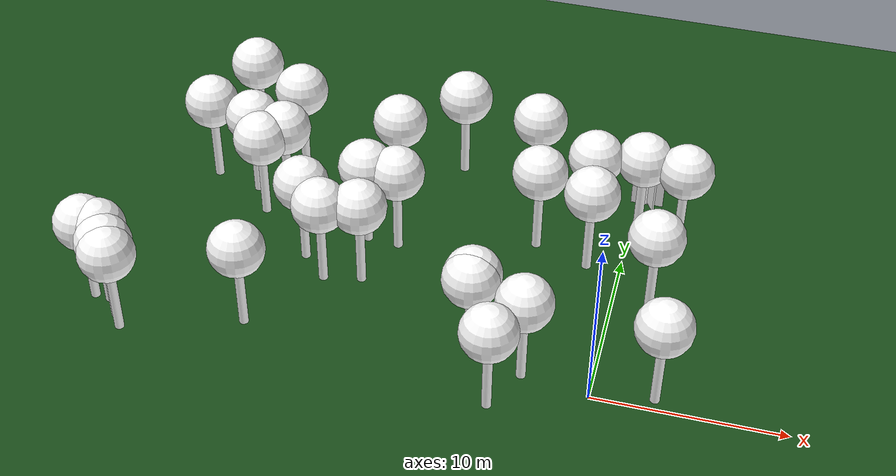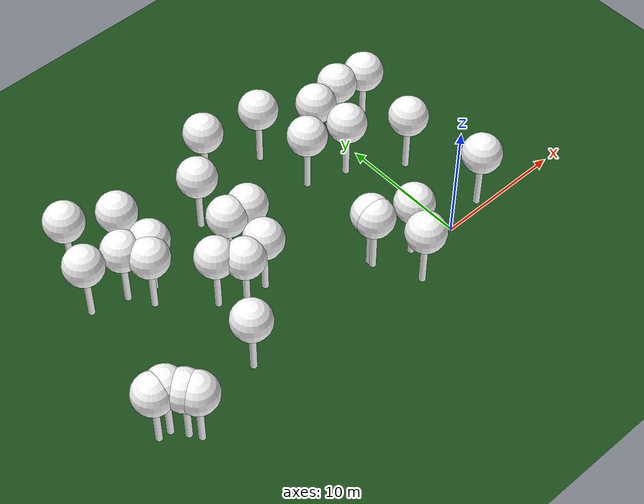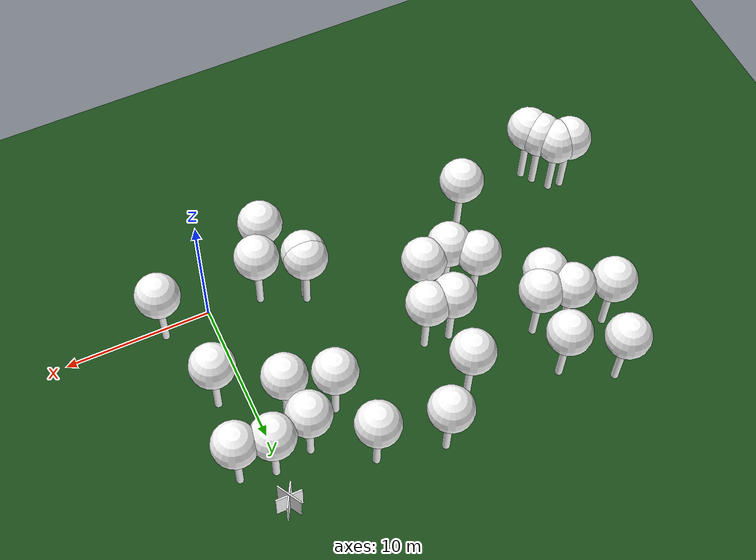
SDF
<sdf version="1.8">
 <world name="forest_world">
  <model name="fire_2">
   <pose>0.56 15.14 1.00 0 0 0.00</pose>
   <static>true</static>
   <link name="fire_link">
    <visual name="fire_2_fire_main_0">
     <geometry><box><size>1.80 0.10 2.00</size></box></geometry>
     <material>
      <ambient>0.7 0.35 0.0 1</ambient>
      <diffuse>1 1 1 1</diffuse>
      <specular>0 0 0 1</specular>
      <emissive>0 0 0 1</emissive>
      <pbr>
       <metal><albedo_map>textures/fire.png</albedo_map><metalness>0.0</metalness><roughness>0.6</roughness></metal>
      </pbr>
     </material>
     <transparency>0.0</transparency>
     <cast_shadows>false</cast_shadows>
    </visual>
    <visual name="fire_2_fire_60_1">
     <pose>0.00 0.00 0.10 0 0 1.05</pose>
     <geometry><box><size>1.80 0.10 2.00</size></box></geometry>
     <material>
      <ambient>0.7 0.35 0.0 1</ambient>
      <diffuse>1 1 1 1</diffuse>
      <specular>0 0 0 1</specular>
      <emissive>0 0 0 1</emissive>
      <pbr>
       <metal><albedo_map>textures/fire.png</albedo_map><metalness>0.0</metalness><roughness>0.6</roughness></metal>
      </pbr>
     </material>
     <transparency>0.0</transparency>
     <cast_shadows>false</cast_shadows>
    </visual>
    <visual name="fire_2_fire_120_2">
     <pose>0.00 0.00 0.20 0 0 2.09</pose>
     <geometry><box><size>1.80 0.10 2.00</size></box></geometry>
     <material>
      <ambient>0.7 0.35 0.0 1</ambient>
      <diffuse>1 1 1 1</diffuse>
      <specular>0 0 0 1</specular>
      <emissive>0 0 0 1</emissive>
      <pbr>
       <metal><albedo_map>textures/fire.png</albedo_map><metalness>0.0</metalness><roughness>0.6</roughness></metal>
      </pbr>
     </material>
     <transparency>0.0</transparency>
     <cast_shadows>false</cast_shadows>
    </visual>
    <light type="point" name="fire_2_light_0">
     <pose>0.40 0.00 0.50 0 0 0</pose>
     <diffuse>1.0 0.7 0.3 1</diffuse>
     <specular>1.0 0.8 0.3 1</specular>
     <intensity>2</intensity>
     <attenuation>
      <range>2</range>
      <constant>0.1</constant>
      <linear>0.05</linear>
      <quadratic>0.02</quadratic>
     </attenuation>
     <cast_shadows>false</cast_shadows>
    </light>
    <light type="point" name="fire_2_light_1">
     <pose>-0.20 0.35 0.50 0 0 0</pose>
     <diffuse>1.0 0.7 0.3 1</diffuse>
     <specular>1.0 0.8 0.3 1</specular>
     <intensity>2</intensity>
     <attenuation>
      <range>2</range>
      <constant>0.1</constant>
      <linear>0.05</linear>
      <quadratic>0.02</quadratic>
     </attenuation>
     <cast_shadows>false</cast_shadows>
    </light>
    <light type="point" name="fire_2_light_2">
     <pose>-0.20 -0.35 0.50 0 0 0</pose>
     <diffuse>1.0 0.7 0.3 1</diffuse>
     <specular>1.0 0.8 0.3 1</specular>
     <intensity>2</intensity>
     <attenuation>
      <range>2</range>
      <constant>0.1</constant>
      <linear>0.05</linear>
      <quadratic>0.02</quadratic>
     </attenuation>
     <cast_shadows>false</cast_shadows>
    </light>
   </link>
   <plugin filename="libignition-gazebo-pose-publisher-system.so" name="ignition::gazebo::systems::PosePublisher">
    <frame_id>world</frame_id>
    <publish_link_pose>true</publish_link_pose>
    <use_pose_vector_msg>true</use_pose_vector_msg>
    <static_publisher>true</static_publisher>
    <static_update_frequency>1</static_update_frequency>
   </plugin>
  </model>
  <model name="tree_simple498">
   <static>1</static>
   <link name="link">
    <pose>0 0 0.1 0 -0 0</pose>
    <collision name="collision_trunk">
     <pose>0 0 2 0 -0 0</pose>
     <geometry><cylinder><radius>0.25</radius><length>4</length></cylinder></geometry>
    </collision>
    <collision name="collision_treetop">
     <pose>0 0 5.2 0 -0 0</pose>
     <geometry><sphere><radius>1.5</radius></sphere></geometry>
    </collision>
    <visual name="trunk">
     <pose>0 0 2 0 -0 0</pose>
     <geometry><cylinder><radius>0.25</radius><length>4</length></cylinder></geometry>
     <material>
      <ambient>0.5 0.5 0.5 1</ambient>
      <diffuse>1.0 1.0 1.0 1</diffuse>
      <specular>0.0 0.0 0.0 1</specular>
      <pbr>
       <metal>
        <albedo_map>../worlds/textures/tree_simple_trunk.jpg</albedo_map>
        <metalness>0.0</metalness>
        <roughness>0.8</roughness>
       </metal>
      </pbr>
     </material>
    </visual>
    <visual name="treetop">
     <pose>0 0 5.2 0 -0 0</pose>
     <geometry><sphere><radius>1.5</radius></sphere></geometry>
     <material>
      <ambient>0.5 0.5 0.5 1</ambient>
      <diffuse>1.0 1.0 1.0 1</diffuse>
      <specular>0.0 0.0 0.0 1</specular>
      <pbr>
       <metal>
        <albedo_map>../worlds/textures/tree_simple_treetop.jpg</albedo_map>
        <metalness>0.0</metalness>
        <roughness>0.9</roughness>
       </metal>
      </pbr>
     </material>
    </visual>
   </link>
   <pose>-20.062069779 9.09254194943 0 0 -0 0</pose>
  </model>
  <model name="tree_simple488">
   <static>1</static>
   <link name="link">
    <pose>0 0 0.1 0 -0 0</pose>
    <collision name="collision_trunk">
     <pose>0 0 2 0 -0 0</pose>
     <geometry><cylinder><radius>0.25</radius><length>4</length></cylinder></geometry>
    </collision>
    <collision name="collision_treetop">
     <pose>0 0 5.2 0 -0 0</pose>
     <geometry><sphere><radius>1.5</radius></sphere></geometry>
    </collision>
    <visual name="trunk">
     <pose>0 0 2 0 -0 0</pose>
     <geometry><cylinder><radius>0.25</radius><length>4</length></cylinder></geometry>
     <material>
      <ambient>0.5 0.5 0.5 1</ambient>
      <diffuse>1.0 1.0 1.0 1</diffuse>
      <specular>0.0 0.0 0.0 1</specular>
      <pbr>
       <metal>
        <albedo_map>../worlds/textures/tree_simple_trunk.jpg</albedo_map>
        <metalness>0.0</metalness>
        <roughness>0.8</roughness>
       </metal>
      </pbr>
     </material>
    </visual>
    <visual name="treetop">
     <pose>0 0 5.2 0 -0 0</pose>
     <geometry><sphere><radius>1.5</radius></sphere></geometry>
     <material>
      <ambient>0.5 0.5 0.5 1</ambient>
      <diffuse>1.0 1.0 1.0 1</diffuse>
      <specular>0.0 0.0 0.0 1</specular>
      <pbr>
       <metal>
        <albedo_map>../worlds/textures/tree_simple_treetop.jpg</albedo_map>
        <metalness>0.0</metalness>
        <roughness>0.9</roughness>
       </metal>
      </pbr>
     </material>
    </visual>
   </link>
   <pose>-13.1215818691 12.435953241 0 0 -0 0</pose>
  </model>
  <model name="tree_simple480">
   <static>1</static>
   <link name="link">
    <pose>0 0 0.1 0 -0 0</pose>
    <collision name="collision_trunk">
     <pose>0 0 2 0 -0 0</pose>
     <geometry><cylinder><radius>0.25</radius><length>4</length></cylinder></geometry>
    </collision>
    <collision name="collision_treetop">
     <pose>0 0 5.2 0 -0 0</pose>
     <geometry><sphere><radius>1.5</radius></sphere></geometry>
    </collision>
    <visual name="trunk">
     <pose>0 0 2 0 -0 0</pose>
     <geometry><cylinder><radius>0.25</radius><length>4</length></cylinder></geometry>
     <material>
      <ambient>0.5 0.5 0.5 1</ambient>
      <diffuse>1.0 1.0 1.0 1</diffuse>
      <specular>0.0 0.0 0.0 1</specular>
      <pbr>
       <metal>
        <albedo_map>../worlds/textures/tree_simple_trunk.jpg</albedo_map>
        <metalness>0.0</metalness>
        <roughness>0.8</roughness>
       </metal>
      </pbr>
     </material>
    </visual>
    <visual name="treetop">
     <pose>0 0 5.2 0 -0 0</pose>
     <geometry><sphere><radius>1.5</radius></sphere></geometry>
     <material>
      <ambient>0.5 0.5 0.5 1</ambient>
      <diffuse>1.0 1.0 1.0 1</diffuse>
      <specular>0.0 0.0 0.0 1</specular>
      <pbr>
       <metal>
        <albedo_map>../worlds/textures/tree_simple_treetop.jpg</albedo_map>
        <metalness>0.0</metalness>
        <roughness>0.9</roughness>
       </metal>
      </pbr>
     </material>
    </visual>
   </link>
   <pose>-2.16211412072 12.1351070175 0 0 -0 0</pose>
  </model>
  <model name="tree_simple460">
   <static>1</static>
   <link name="link">
    <pose>0 0 0.1 0 -0 0</pose>
    <collision name="collision_trunk">
     <pose>0 0 2 0 -0 0</pose>
     <geometry><cylinder><radius>0.25</radius><length>4</length></cylinder></geometry>
    </collision>
    <collision name="collision_treetop">
     <pose>0 0 5.2 0 -0 0</pose>
     <geometry><sphere><radius>1.5</radius></sphere></geometry>
    </collision>
    <visual name="trunk">
     <pose>0 0 2 0 -0 0</pose>
     <geometry><cylinder><radius>0.25</radius><length>4</length></cylinder></geometry>
     <material>
      <ambient>0.5 0.5 0.5 1</ambient>
      <diffuse>1.0 1.0 1.0 1</diffuse>
      <specular>0.0 0.0 0.0 1</specular>
      <pbr>
       <metal>
        <albedo_map>../worlds/textures/tree_simple_trunk.jpg</albedo_map>
        <metalness>0.0</metalness>
        <roughness>0.8</roughness>
       </metal>
      </pbr>
     </material>
    </visual>
    <visual name="treetop">
     <pose>0 0 5.2 0 -0 0</pose>
     <geometry><sphere><radius>1.5</radius></sphere></geometry>
     <material>
      <ambient>0.5 0.5 0.5 1</ambient>
      <diffuse>1.0 1.0 1.0 1</diffuse>
      <specular>0.0 0.0 0.0 1</specular>
      <pbr>
       <metal>
        <albedo_map>../worlds/textures/tree_simple_treetop.jpg</albedo_map>
        <metalness>0.0</metalness>
        <roughness>0.9</roughness>
       </metal>
      </pbr>
     </material>
    </visual>
   </link>
   <pose>-19.1263542494 10.273291852 0 0 -0 0</pose>
  </model>
  <model name="tree_simple453">
   <static>1</static>
   <link name="link">
    <pose>0 0 0.1 0 -0 0</pose>
    <collision name="collision_trunk">
     <pose>0 0 2 0 -0 0</pose>
     <geometry><cylinder><radius>0.25</radius><length>4</length></cylinder></geometry>
    </collision>
    <collision name="collision_treetop">
     <pose>0 0 5.2 0 -0 0</pose>
     <geometry><sphere><radius>1.5</radius></sphere></geometry>
    </collision>
    <visual name="trunk">
     <pose>0 0 2 0 -0 0</pose>
     <geometry><cylinder><radius>0.25</radius><length>4</length></cylinder></geometry>
     <material>
      <ambient>0.5 0.5 0.5 1</ambient>
      <diffuse>1.0 1.0 1.0 1</diffuse>
      <specular>0.0 0.0 0.0 1</specular>
      <pbr>
       <metal>
        <albedo_map>../worlds/textures/tree_simple_trunk.jpg</albedo_map>
        <metalness>0.0</metalness>
        <roughness>0.8</roughness>
       </metal>
      </pbr>
     </material>
    </visual>
    <visual name="treetop">
     <pose>0 0 5.2 0 -0 0</pose>
     <geometry><sphere><radius>1.5</radius></sphere></geometry>
     <material>
      <ambient>0.5 0.5 0.5 1</ambient>
      <diffuse>1.0 1.0 1.0 1</diffuse>
      <specular>0.0 0.0 0.0 1</specular>
      <pbr>
       <metal>
        <albedo_map>../worlds/textures/tree_simple_treetop.jpg</albedo_map>
        <metalness>0.0</metalness>
        <roughness>0.9</roughness>
       </metal>
      </pbr>
     </material>
    </visual>
   </link>
   <pose>-12.135251061 8.19022164755 0 0 -0 0</pose>
  </model>
  <model name="tree_simple448">
   <static>1</static>
   <link name="link">
    <pose>0 0 0.1 0 -0 0</pose>
    <collision name="collision_trunk">
     <pose>0 0 2 0 -0 0</pose>
     <geometry><cylinder><radius>0.25</radius><length>4</length></cylinder></geometry>
    </collision>
    <collision name="collision_treetop">
     <pose>0 0 5.2 0 -0 0</pose>
     <geometry><sphere><radius>1.5</radius></sphere></geometry>
    </collision>
    <visual name="trunk">
     <pose>0 0 2 0 -0 0</pose>
     <geometry><cylinder><radius>0.25</radius><length>4</length></cylinder></geometry>
     <material>
      <ambient>0.5 0.5 0.5 1</ambient>
      <diffuse>1.0 1.0 1.0 1</diffuse>
      <specular>0.0 0.0 0.0 1</specular>
      <pbr>
       <metal>
        <albedo_map>../worlds/textures/tree_simple_trunk.jpg</albedo_map>
        <metalness>0.0</metalness>
        <roughness>0.8</roughness>
       </metal>
      </pbr>
     </material>
    </visual>
    <visual name="treetop">
     <pose>0 0 5.2 0 -0 0</pose>
     <geometry><sphere><radius>1.5</radius></sphere></geometry>
     <material>
      <ambient>0.5 0.5 0.5 1</ambient>
      <diffuse>1.0 1.0 1.0 1</diffuse>
      <specular>0.0 0.0 0.0 1</specular>
      <pbr>
       <metal>
        <albedo_map>../worlds/textures/tree_simple_treetop.jpg</albedo_map>
        <metalness>0.0</metalness>
        <roughness>0.9</roughness>
       </metal>
      </pbr>
     </material>
    </visual>
   </link>
   <pose>-24.5519753109 -1.42546954192 0 0 -0 0</pose>
  </model>
  <model name="tree_simple444">
   <static>1</static>
   <link name="link">
    <pose>0 0 0.1 0 -0 0</pose>
    <collision name="collision_trunk">
     <pose>0 0 2 0 -0 0</pose>
     <geometry><cylinder><radius>0.25</radius><length>4</length></cylinder></geometry>
    </collision>
    <collision name="collision_treetop">
     <pose>0 0 5.2 0 -0 0</pose>
     <geometry><sphere><radius>1.5</radius></sphere></geometry>
    </collision>
    <visual name="trunk">
     <pose>0 0 2 0 -0 0</pose>
     <geometry><cylinder><radius>0.25</radius><length>4</length></cylinder></geometry>
     <material>
      <ambient>0.5 0.5 0.5 1</ambient>
      <diffuse>1.0 1.0 1.0 1</diffuse>
      <specular>0.0 0.0 0.0 1</specular>
      <pbr>
       <metal>
        <albedo_map>../worlds/textures/tree_simple_trunk.jpg</albedo_map>
        <metalness>0.0</metalness>
        <roughness>0.8</roughness>
       </metal>
      </pbr>
     </material>
    </visual>
    <visual name="treetop">
     <pose>0 0 5.2 0 -0 0</pose>
     <geometry><sphere><radius>1.5</radius></sphere></geometry>
     <material>
      <ambient>0.5 0.5 0.5 1</ambient>
      <diffuse>1.0 1.0 1.0 1</diffuse>
      <specular>0.0 0.0 0.0 1</specular>
      <pbr>
       <metal>
        <albedo_map>../worlds/textures/tree_simple_treetop.jpg</albedo_map>
        <metalness>0.0</metalness>
        <roughness>0.9</roughness>
       </metal>
      </pbr>
     </material>
    </visual>
   </link>
   <pose>-23.7375888222 11.4825776361 0 0 -0 0</pose>
  </model>
  <model name="tree_simple424">
   <static>1</static>
   <link name="link">
    <pose>0 0 0.1 0 -0 0</pose>
    <collision name="collision_trunk">
     <pose>0 0 2 0 -0 0</pose>
     <geometry><cylinder><radius>0.25</radius><length>4</length></cylinder></geometry>
    </collision>
    <collision name="collision_treetop">
     <pose>0 0 5.2 0 -0 0</pose>
     <geometry><sphere><radius>1.5</radius></sphere></geometry>
    </collision>
    <visual name="trunk">
     <pose>0 0 2 0 -0 0</pose>
     <geometry><cylinder><radius>0.25</radius><length>4</length></cylinder></geometry>
     <material>
      <ambient>0.5 0.5 0.5 1</ambient>
      <diffuse>1.0 1.0 1.0 1</diffuse>
      <specular>0.0 0.0 0.0 1</specular>
      <pbr>
       <metal>
        <albedo_map>../worlds/textures/tree_simple_trunk.jpg</albedo_map>
        <metalness>0.0</metalness>
        <roughness>0.8</roughness>
       </metal>
      </pbr>
     </material>
    </visual>
    <visual name="treetop">
     <pose>0 0 5.2 0 -0 0</pose>
     <geometry><sphere><radius>1.5</radius></sphere></geometry>
     <material>
      <ambient>0.5 0.5 0.5 1</ambient>
      <diffuse>1.0 1.0 1.0 1</diffuse>
      <specular>0.0 0.0 0.0 1</specular>
      <pbr>
       <metal>
        <albedo_map>../worlds/textures/tree_simple_treetop.jpg</albedo_map>
        <metalness>0.0</metalness>
        <roughness>0.9</roughness>
       </metal>
      </pbr>
     </material>
    </visual>
   </link>
   <pose>-16.7770993139 6.12178979124 0 0 -0 0</pose>
  </model>
  <model name="tree_simple417">
   <static>1</static>
   <link name="link">
    <pose>0 0 0.1 0 -0 0</pose>
    <collision name="collision_trunk">
     <pose>0 0 2 0 -0 0</pose>
     <geometry><cylinder><radius>0.25</radius><length>4</length></cylinder></geometry>
    </collision>
    <collision name="collision_treetop">
     <pose>0 0 5.2 0 -0 0</pose>
     <geometry><sphere><radius>1.5</radius></sphere></geometry>
    </collision>
    <visual name="trunk">
     <pose>0 0 2 0 -0 0</pose>
     <geometry><cylinder><radius>0.25</radius><length>4</length></cylinder></geometry>
     <material>
      <ambient>0.5 0.5 0.5 1</ambient>
      <diffuse>1.0 1.0 1.0 1</diffuse>
      <specular>0.0 0.0 0.0 1</specular>
      <pbr>
       <metal>
        <albedo_map>../worlds/textures/tree_simple_trunk.jpg</albedo_map>
        <metalness>0.0</metalness>
        <roughness>0.8</roughness>
       </metal>
      </pbr>
     </material>
    </visual>
    <visual name="treetop">
     <pose>0 0 5.2 0 -0 0</pose>
     <geometry><sphere><radius>1.5</radius></sphere></geometry>
     <material>
      <ambient>0.5 0.5 0.5 1</ambient>
      <diffuse>1.0 1.0 1.0 1</diffuse>
      <specular>0.0 0.0 0.0 1</specular>
      <pbr>
       <metal>
        <albedo_map>../worlds/textures/tree_simple_treetop.jpg</albedo_map>
        <metalness>0.0</metalness>
        <roughness>0.9</roughness>
       </metal>
      </pbr>
     </material>
    </visual>
   </link>
   <pose>-1.82310579314 9.17527441854 0 0 -0 0</pose>
  </model>
  <model name="tree_simple412">
   <static>1</static>
   <link name="link">
    <pose>0 0 0.1 0 -0 0</pose>
    <collision name="collision_trunk">
     <pose>0 0 2 0 -0 0</pose>
     <geometry><cylinder><radius>0.25</radius><length>4</length></cylinder></geometry>
    </collision>
    <collision name="collision_treetop">
     <pose>0 0 5.2 0 -0 0</pose>
     <geometry><sphere><radius>1.5</radius></sphere></geometry>
    </collision>
    <visual name="trunk">
     <pose>0 0 2 0 -0 0</pose>
     <geometry><cylinder><radius>0.25</radius><length>4</length></cylinder></geometry>
     <material>
      <ambient>0.5 0.5 0.5 1</ambient>
      <diffuse>1.0 1.0 1.0 1</diffuse>
      <specular>0.0 0.0 0.0 1</specular>
      <pbr>
       <metal>
        <albedo_map>../worlds/textures/tree_simple_trunk.jpg</albedo_map>
        <metalness>0.0</metalness>
        <roughness>0.8</roughness>
       </metal>
      </pbr>
     </material>
    </visual>
    <visual name="treetop">
     <pose>0 0 5.2 0 -0 0</pose>
     <geometry><sphere><radius>1.5</radius></sphere></geometry>
     <material>
      <ambient>0.5 0.5 0.5 1</ambient>
      <diffuse>1.0 1.0 1.0 1</diffuse>
      <specular>0.0 0.0 0.0 1</specular>
      <pbr>
       <metal>
        <albedo_map>../worlds/textures/tree_simple_treetop.jpg</albedo_map>
        <metalness>0.0</metalness>
        <roughness>0.9</roughness>
       </metal>
      </pbr>
     </material>
    </visual>
   </link>
   <pose>1.94235434688 6.68973059551 0 0 -0 0</pose>
  </model>
  <model name="tree_simple393">
   <static>1</static>
   <link name="link">
    <pose>0 0 0.1 0 -0 0</pose>
    <collision name="collision_trunk">
     <pose>0 0 2 0 -0 0</pose>
     <geometry><cylinder><radius>0.25</radius><length>4</length></cylinder></geometry>
    </collision>
    <collision name="collision_treetop">
     <pose>0 0 5.2 0 -0 0</pose>
     <geometry><sphere><radius>1.5</radius></sphere></geometry>
    </collision>
    <visual name="trunk">
     <pose>0 0 2 0 -0 0</pose>
     <geometry><cylinder><radius>0.25</radius><length>4</length></cylinder></geometry>
     <material>
      <ambient>0.5 0.5 0.5 1</ambient>
      <diffuse>1.0 1.0 1.0 1</diffuse>
      <specular>0.0 0.0 0.0 1</specular>
      <pbr>
       <metal>
        <albedo_map>../worlds/textures/tree_simple_trunk.jpg</albedo_map>
        <metalness>0.0</metalness>
        <roughness>0.8</roughness>
       </metal>
      </pbr>
     </material>
    </visual>
    <visual name="treetop">
     <pose>0 0 5.2 0 -0 0</pose>
     <geometry><sphere><radius>1.5</radius></sphere></geometry>
     <material>
      <ambient>0.5 0.5 0.5 1</ambient>
      <diffuse>1.0 1.0 1.0 1</diffuse>
      <specular>0.0 0.0 0.0 1</specular>
      <pbr>
       <metal>
        <albedo_map>../worlds/textures/tree_simple_treetop.jpg</albedo_map>
        <metalness>0.0</metalness>
        <roughness>0.9</roughness>
       </metal>
      </pbr>
     </material>
    </visual>
   </link>
   <pose>-19.2161378336 13.717868908 0 0 -0 0</pose>
  </model>
  <model name="tree_simple376">
   <static>1</static>
   <link name="link">
    <pose>0 0 0.1 0 -0 0</pose>
    <collision name="collision_trunk">
     <pose>0 0 2 0 -0 0</pose>
     <geometry><cylinder><radius>0.25</radius><length>4</length></cylinder></geometry>
    </collision>
    <collision name="collision_treetop">
     <pose>0 0 5.2 0 -0 0</pose>
     <geometry><sphere><radius>1.5</radius></sphere></geometry>
    </collision>
    <visual name="trunk">
     <pose>0 0 2 0 -0 0</pose>
     <geometry><cylinder><radius>0.25</radius><length>4</length></cylinder></geometry>
     <material>
      <ambient>0.5 0.5 0.5 1</ambient>
      <diffuse>1.0 1.0 1.0 1</diffuse>
      <specular>0.0 0.0 0.0 1</specular>
      <pbr>
       <metal>
        <albedo_map>../worlds/textures/tree_simple_trunk.jpg</albedo_map>
        <metalness>0.0</metalness>
        <roughness>0.8</roughness>
       </metal>
      </pbr>
     </material>
    </visual>
    <visual name="treetop">
     <pose>0 0 5.2 0 -0 0</pose>
     <geometry><sphere><radius>1.5</radius></sphere></geometry>
     <material>
      <ambient>0.5 0.5 0.5 1</ambient>
      <diffuse>1.0 1.0 1.0 1</diffuse>
      <specular>0.0 0.0 0.0 1</specular>
      <pbr>
       <metal>
        <albedo_map>../worlds/textures/tree_simple_treetop.jpg</albedo_map>
        <metalness>0.0</metalness>
        <roughness>0.9</roughness>
       </metal>
      </pbr>
     </material>
    </visual>
   </link>
   <pose>-3.57495660346 0.511559407044 0 0 -0 0</pose>
  </model>
  <model name="tree_simple360">
   <static>1</static>
   <link name="link">
    <pose>0 0 0.1 0 -0 0</pose>
    <collision name="collision_trunk">
     <pose>0 0 2 0 -0 0</pose>
     <geometry><cylinder><radius>0.25</radius><length>4</length></cylinder></geometry>
    </collision>
    <collision name="collision_treetop">
     <pose>0 0 5.2 0 -0 0</pose>
     <geometry><sphere><radius>1.5</radius></sphere></geometry>
    </collision>
    <visual name="trunk">
     <pose>0 0 2 0 -0 0</pose>
     <geometry><cylinder><radius>0.25</radius><length>4</length></cylinder></geometry>
     <material>
      <ambient>0.5 0.5 0.5 1</ambient>
      <diffuse>1.0 1.0 1.0 1</diffuse>
      <specular>0.0 0.0 0.0 1</specular>
      <pbr>
       <metal>
        <albedo_map>../worlds/textures/tree_simple_trunk.jpg</albedo_map>
        <metalness>0.0</metalness>
        <roughness>0.8</roughness>
       </metal>
      </pbr>
     </material>
    </visual>
    <visual name="treetop">
     <pose>0 0 5.2 0 -0 0</pose>
     <geometry><sphere><radius>1.5</radius></sphere></geometry>
     <material>
      <ambient>0.5 0.5 0.5 1</ambient>
      <diffuse>1.0 1.0 1.0 1</diffuse>
      <specular>0.0 0.0 0.0 1</specular>
      <pbr>
       <metal>
        <albedo_map>../worlds/textures/tree_simple_treetop.jpg</albedo_map>
        <metalness>0.0</metalness>
        <roughness>0.9</roughness>
       </metal>
      </pbr>
     </material>
    </visual>
   </link>
   <pose>-13.8761955988 8.30702560736 0 0 -0 0</pose>
  </model>
  <model name="tree_simple338">
   <static>1</static>
   <link name="link">
    <pose>0 0 0.1 0 -0 0</pose>
    <collision name="collision_trunk">
     <pose>0 0 2 0 -0 0</pose>
     <geometry><cylinder><radius>0.25</radius><length>4</length></cylinder></geometry>
    </collision>
    <collision name="collision_treetop">
     <pose>0 0 5.2 0 -0 0</pose>
     <geometry><sphere><radius>1.5</radius></sphere></geometry>
    </collision>
    <visual name="trunk">
     <pose>0 0 2 0 -0 0</pose>
     <geometry><cylinder><radius>0.25</radius><length>4</length></cylinder></geometry>
     <material>
      <ambient>0.5 0.5 0.5 1</ambient>
      <diffuse>1.0 1.0 1.0 1</diffuse>
      <specular>0.0 0.0 0.0 1</specular>
      <pbr>
       <metal>
        <albedo_map>../worlds/textures/tree_simple_trunk.jpg</albedo_map>
        <metalness>0.0</metalness>
        <roughness>0.8</roughness>
       </metal>
      </pbr>
     </material>
    </visual>
    <visual name="treetop">
     <pose>0 0 5.2 0 -0 0</pose>
     <geometry><sphere><radius>1.5</radius></sphere></geometry>
     <material>
      <ambient>0.5 0.5 0.5 1</ambient>
      <diffuse>1.0 1.0 1.0 1</diffuse>
      <specular>0.0 0.0 0.0 1</specular>
      <pbr>
       <metal>
        <albedo_map>../worlds/textures/tree_simple_treetop.jpg</albedo_map>
        <metalness>0.0</metalness>
        <roughness>0.9</roughness>
       </metal>
      </pbr>
     </material>
    </visual>
   </link>
   <pose>-22.4236352143 15.4465495723 0 0 -0 0</pose>
  </model>
  <model name="tree_simple324">
   <static>1</static>
   <link name="link">
    <pose>0 0 0.1 0 -0 0</pose>
    <collision name="collision_trunk">
     <pose>0 0 2 0 -0 0</pose>
     <geometry><cylinder><radius>0.25</radius><length>4</length></cylinder></geometry>
    </collision>
    <collision name="collision_treetop">
     <pose>0 0 5.2 0 -0 0</pose>
     <geometry><sphere><radius>1.5</radius></sphere></geometry>
    </collision>
    <visual name="trunk">
     <pose>0 0 2 0 -0 0</pose>
     <geometry><cylinder><radius>0.25</radius><length>4</length></cylinder></geometry>
     <material>
      <ambient>0.5 0.5 0.5 1</ambient>
      <diffuse>1.0 1.0 1.0 1</diffuse>
      <specular>0.0 0.0 0.0 1</specular>
      <pbr>
       <metal>
        <albedo_map>../worlds/textures/tree_simple_trunk.jpg</albedo_map>
        <metalness>0.0</metalness>
        <roughness>0.8</roughness>
       </metal>
      </pbr>
     </material>
    </visual>
    <visual name="treetop">
     <pose>0 0 5.2 0 -0 0</pose>
     <geometry><sphere><radius>1.5</radius></sphere></geometry>
     <material>
      <ambient>0.5 0.5 0.5 1</ambient>
      <diffuse>1.0 1.0 1.0 1</diffuse>
      <specular>0.0 0.0 0.0 1</specular>
      <pbr>
       <metal>
        <albedo_map>../worlds/textures/tree_simple_treetop.jpg</albedo_map>
        <metalness>0.0</metalness>
        <roughness>0.9</roughness>
       </metal>
      </pbr>
     </material>
    </visual>
   </link>
   <pose>2.67974288493 12.1656578915 0 0 -0 0</pose>
  </model>
  <model name="tree_simple308">
   <static>1</static>
   <link name="link">
    <pose>0 0 0.1 0 -0 0</pose>
    <collision name="collision_trunk">
     <pose>0 0 2 0 -0 0</pose>
     <geometry><cylinder><radius>0.25</radius><length>4</length></cylinder></geometry>
    </collision>
    <collision name="collision_treetop">
     <pose>0 0 5.2 0 -0 0</pose>
     <geometry><sphere><radius>1.5</radius></sphere></geometry>
    </collision>
    <visual name="trunk">
     <pose>0 0 2 0 -0 0</pose>
     <geometry><cylinder><radius>0.25</radius><length>4</length></cylinder></geometry>
     <material>
      <ambient>0.5 0.5 0.5 1</ambient>
      <diffuse>1.0 1.0 1.0 1</diffuse>
      <specular>0.0 0.0 0.0 1</specular>
      <pbr>
       <metal>
        <albedo_map>../worlds/textures/tree_simple_trunk.jpg</albedo_map>
        <metalness>0.0</metalness>
        <roughness>0.8</roughness>
       </metal>
      </pbr>
     </material>
    </visual>
    <visual name="treetop">
     <pose>0 0 5.2 0 -0 0</pose>
     <geometry><sphere><radius>1.5</radius></sphere></geometry>
     <material>
      <ambient>0.5 0.5 0.5 1</ambient>
      <diffuse>1.0 1.0 1.0 1</diffuse>
      <specular>0.0 0.0 0.0 1</specular>
      <pbr>
       <metal>
        <albedo_map>../worlds/textures/tree_simple_treetop.jpg</albedo_map>
        <metalness>0.0</metalness>
        <roughness>0.9</roughness>
       </metal>
      </pbr>
     </material>
    </visual>
   </link>
   <pose>3.23733276298 0.582978933188 0 0 -0 0</pose>
  </model>
  <model name="tree_simple284">
   <static>1</static>
   <link name="link">
    <pose>0 0 0.1 0 -0 0</pose>
    <collision name="collision_trunk">
     <pose>0 0 2 0 -0 0</pose>
     <geometry><cylinder><radius>0.25</radius><length>4</length></cylinder></geometry>
    </collision>
    <collision name="collision_treetop">
     <pose>0 0 5.2 0 -0 0</pose>
     <geometry><sphere><radius>1.5</radius></sphere></geometry>
    </collision>
    <visual name="trunk">
     <pose>0 0 2 0 -0 0</pose>
     <geometry><cylinder><radius>0.25</radius><length>4</length></cylinder></geometry>
     <material>
      <ambient>0.5 0.5 0.5 1</ambient>
      <diffuse>1.0 1.0 1.0 1</diffuse>
      <specular>0.0 0.0 0.0 1</specular>
      <pbr>
       <metal>
        <albedo_map>../worlds/textures/tree_simple_trunk.jpg</albedo_map>
        <metalness>0.0</metalness>
        <roughness>0.8</roughness>
       </metal>
      </pbr>
     </material>
    </visual>
    <visual name="treetop">
     <pose>0 0 5.2 0 -0 0</pose>
     <geometry><sphere><radius>1.5</radius></sphere></geometry>
     <material>
      <ambient>0.5 0.5 0.5 1</ambient>
      <diffuse>1.0 1.0 1.0 1</diffuse>
      <specular>0.0 0.0 0.0 1</specular>
      <pbr>
       <metal>
        <albedo_map>../worlds/textures/tree_simple_treetop.jpg</albedo_map>
        <metalness>0.0</metalness>
        <roughness>0.9</roughness>
       </metal>
      </pbr>
     </material>
    </visual>
   </link>
   <pose>-18.3910783374 0.559962709575 0 0 -0 0</pose>
  </model>
  <model name="tree_simple282">
   <static>1</static>
   <link name="link">
    <pose>0 0 0.1 0 -0 0</pose>
    <collision name="collision_trunk">
     <pose>0 0 2 0 -0 0</pose>
     <geometry><cylinder><radius>0.25</radius><length>4</length></cylinder></geometry>
    </collision>
    <collision name="collision_treetop">
     <pose>0 0 5.2 0 -0 0</pose>
     <geometry><sphere><radius>1.5</radius></sphere></geometry>
    </collision>
    <visual name="trunk">
     <pose>0 0 2 0 -0 0</pose>
     <geometry><cylinder><radius>0.25</radius><length>4</length></cylinder></geometry>
     <material>
      <ambient>0.5 0.5 0.5 1</ambient>
      <diffuse>1.0 1.0 1.0 1</diffuse>
      <specular>0.0 0.0 0.0 1</specular>
      <pbr>
       <metal>
        <albedo_map>../worlds/textures/tree_simple_trunk.jpg</albedo_map>
        <metalness>0.0</metalness>
        <roughness>0.8</roughness>
       </metal>
      </pbr>
     </material>
    </visual>
    <visual name="treetop">
     <pose>0 0 5.2 0 -0 0</pose>
     <geometry><sphere><radius>1.5</radius></sphere></geometry>
     <material>
      <ambient>0.5 0.5 0.5 1</ambient>
      <diffuse>1.0 1.0 1.0 1</diffuse>
      <specular>0.0 0.0 0.0 1</specular>
      <pbr>
       <metal>
        <albedo_map>../worlds/textures/tree_simple_treetop.jpg</albedo_map>
        <metalness>0.0</metalness>
        <roughness>0.9</roughness>
       </metal>
      </pbr>
     </material>
    </visual>
   </link>
   <pose>-10.116665752 15.3935200089 0 0 -0 0</pose>
  </model>
  <model name="tree_simple279">
   <static>1</static>
   <link name="link">
    <pose>0 0 0.1 0 -0 0</pose>
    <collision name="collision_trunk">
     <pose>0 0 2 0 -0 0</pose>
     <geometry><cylinder><radius>0.25</radius><length>4</length></cylinder></geometry>
    </collision>
    <collision name="collision_treetop">
     <pose>0 0 5.2 0 -0 0</pose>
     <geometry><sphere><radius>1.5</radius></sphere></geometry>
    </collision>
    <visual name="trunk">
     <pose>0 0 2 0 -0 0</pose>
     <geometry><cylinder><radius>0.25</radius><length>4</length></cylinder></geometry>
     <material>
      <ambient>0.5 0.5 0.5 1</ambient>
      <diffuse>1.0 1.0 1.0 1</diffuse>
      <specular>0.0 0.0 0.0 1</specular>
      <pbr>
       <metal>
        <albedo_map>../worlds/textures/tree_simple_trunk.jpg</albedo_map>
        <metalness>0.0</metalness>
        <roughness>0.8</roughness>
       </metal>
      </pbr>
     </material>
    </visual>
    <visual name="treetop">
     <pose>0 0 5.2 0 -0 0</pose>
     <geometry><sphere><radius>1.5</radius></sphere></geometry>
     <material>
      <ambient>0.5 0.5 0.5 1</ambient>
      <diffuse>1.0 1.0 1.0 1</diffuse>
      <specular>0.0 0.0 0.0 1</specular>
      <pbr>
       <metal>
        <albedo_map>../worlds/textures/tree_simple_treetop.jpg</albedo_map>
        <metalness>0.0</metalness>
        <roughness>0.9</roughness>
       </metal>
      </pbr>
     </material>
    </visual>
   </link>
   <pose>-25.0449823603 -0.682470499347 0 0 -0 0</pose>
  </model>
  <model name="tree_simple245">
   <static>1</static>
   <link name="link">
    <pose>0 0 0.1 0 -0 0</pose>
    <collision name="collision_trunk">
     <pose>0 0 2 0 -0 0</pose>
     <geometry><cylinder><radius>0.25</radius><length>4</length></cylinder></geometry>
    </collision>
    <collision name="collision_treetop">
     <pose>0 0 5.2 0 -0 0</pose>
     <geometry><sphere><radius>1.5</radius></sphere></geometry>
    </collision>
    <visual name="trunk">
     <pose>0 0 2 0 -0 0</pose>
     <geometry><cylinder><radius>0.25</radius><length>4</length></cylinder></geometry>
     <material>
      <ambient>0.5 0.5 0.5 1</ambient>
      <diffuse>1.0 1.0 1.0 1</diffuse>
      <specular>0.0 0.0 0.0 1</specular>
      <pbr>
       <metal>
        <albedo_map>../worlds/textures/tree_simple_trunk.jpg</albedo_map>
        <metalness>0.0</metalness>
        <roughness>0.8</roughness>
       </metal>
      </pbr>
     </material>
    </visual>
    <visual name="treetop">
     <pose>0 0 5.2 0 -0 0</pose>
     <geometry><sphere><radius>1.5</radius></sphere></geometry>
     <material>
      <ambient>0.5 0.5 0.5 1</ambient>
      <diffuse>1.0 1.0 1.0 1</diffuse>
      <specular>0.0 0.0 0.0 1</specular>
      <pbr>
       <metal>
        <albedo_map>../worlds/textures/tree_simple_treetop.jpg</albedo_map>
        <metalness>0.0</metalness>
        <roughness>0.9</roughness>
       </metal>
      </pbr>
     </material>
    </visual>
   </link>
   <pose>-25.7973722527 0.315231770046 0 0 -0 0</pose>
  </model>
  <model name="tree_simple226">
   <static>1</static>
   <link name="link">
    <pose>0 0 0.1 0 -0 0</pose>
    <collision name="collision_trunk">
     <pose>0 0 2 0 -0 0</pose>
     <geometry><cylinder><radius>0.25</radius><length>4</length></cylinder></geometry>
    </collision>
    <collision name="collision_treetop">
     <pose>0 0 5.2 0 -0 0</pose>
     <geometry><sphere><radius>1.5</radius></sphere></geometry>
    </collision>
    <visual name="trunk">
     <pose>0 0 2 0 -0 0</pose>
     <geometry><cylinder><radius>0.25</radius><length>4</length></cylinder></geometry>
     <material>
      <ambient>0.5 0.5 0.5 1</ambient>
      <diffuse>1.0 1.0 1.0 1</diffuse>
      <specular>0.0 0.0 0.0 1</specular>
      <pbr>
       <metal>
        <albedo_map>../worlds/textures/tree_simple_trunk.jpg</albedo_map>
        <metalness>0.0</metalness>
        <roughness>0.8</roughness>
       </metal>
      </pbr>
     </material>
    </visual>
    <visual name="treetop">
     <pose>0 0 5.2 0 -0 0</pose>
     <geometry><sphere><radius>1.5</radius></sphere></geometry>
     <material>
      <ambient>0.5 0.5 0.5 1</ambient>
      <diffuse>1.0 1.0 1.0 1</diffuse>
      <specular>0.0 0.0 0.0 1</specular>
      <pbr>
       <metal>
        <albedo_map>../worlds/textures/tree_simple_treetop.jpg</albedo_map>
        <metalness>0.0</metalness>
        <roughness>0.9</roughness>
       </metal>
      </pbr>
     </material>
    </visual>
   </link>
   <pose>-15.3498793375 4.7340721764 0 0 -0 0</pose>
  </model>
  <model name="tree_simple187">
   <static>1</static>
   <link name="link">
    <pose>0 0 0.1 0 -0 0</pose>
    <collision name="collision_trunk">
     <pose>0 0 2 0 -0 0</pose>
     <geometry><cylinder><radius>0.25</radius><length>4</length></cylinder></geometry>
    </collision>
    <collision name="collision_treetop">
     <pose>0 0 5.2 0 -0 0</pose>
     <geometry><sphere><radius>1.5</radius></sphere></geometry>
    </collision>
    <visual name="trunk">
     <pose>0 0 2 0 -0 0</pose>
     <geometry><cylinder><radius>0.25</radius><length>4</length></cylinder></geometry>
     <material>
      <ambient>0.5 0.5 0.5 1</ambient>
      <diffuse>1.0 1.0 1.0 1</diffuse>
      <specular>0.0 0.0 0.0 1</specular>
      <pbr>
       <metal>
        <albedo_map>../worlds/textures/tree_simple_trunk.jpg</albedo_map>
        <metalness>0.0</metalness>
        <roughness>0.8</roughness>
       </metal>
      </pbr>
     </material>
    </visual>
    <visual name="treetop">
     <pose>0 0 5.2 0 -0 0</pose>
     <geometry><sphere><radius>1.5</radius></sphere></geometry>
     <material>
      <ambient>0.5 0.5 0.5 1</ambient>
      <diffuse>1.0 1.0 1.0 1</diffuse>
      <specular>0.0 0.0 0.0 1</specular>
      <pbr>
       <metal>
        <albedo_map>../worlds/textures/tree_simple_treetop.jpg</albedo_map>
        <metalness>0.0</metalness>
        <roughness>0.9</roughness>
       </metal>
      </pbr>
     </material>
    </visual>
   </link>
   <pose>-6.45553635196 1.79140972094 0 0 -0 0</pose>
  </model>
  <model name="tree_simple165">
   <static>1</static>
   <link name="link">
    <pose>0 0 0.1 0 -0 0</pose>
    <collision name="collision_trunk">
     <pose>0 0 2 0 -0 0</pose>
     <geometry><cylinder><radius>0.25</radius><length>4</length></cylinder></geometry>
    </collision>
    <collision name="collision_treetop">
     <pose>0 0 5.2 0 -0 0</pose>
     <geometry><sphere><radius>1.5</radius></sphere></geometry>
    </collision>
    <visual name="trunk">
     <pose>0 0 2 0 -0 0</pose>
     <geometry><cylinder><radius>0.25</radius><length>4</length></cylinder></geometry>
     <material>
      <ambient>0.5 0.5 0.5 1</ambient>
      <diffuse>1.0 1.0 1.0 1</diffuse>
      <specular>0.0 0.0 0.0 1</specular>
      <pbr>
       <metal>
        <albedo_map>../worlds/textures/tree_simple_trunk.jpg</albedo_map>
        <metalness>0.0</metalness>
        <roughness>0.8</roughness>
       </metal>
      </pbr>
     </material>
    </visual>
    <visual name="treetop">
     <pose>0 0 5.2 0 -0 0</pose>
     <geometry><sphere><radius>1.5</radius></sphere></geometry>
     <material>
      <ambient>0.5 0.5 0.5 1</ambient>
      <diffuse>1.0 1.0 1.0 1</diffuse>
      <specular>0.0 0.0 0.0 1</specular>
      <pbr>
       <metal>
        <albedo_map>../worlds/textures/tree_simple_treetop.jpg</albedo_map>
        <metalness>0.0</metalness>
        <roughness>0.9</roughness>
       </metal>
      </pbr>
     </material>
    </visual>
   </link>
   <pose>-6.476660544 1.43780692284 0 0 -0 0</pose>
  </model>
  <model name="tree_simple163">
   <static>1</static>
   <link name="link">
    <pose>0 0 0.1 0 -0 0</pose>
    <collision name="collision_trunk">
     <pose>0 0 2 0 -0 0</pose>
     <geometry><cylinder><radius>0.25</radius><length>4</length></cylinder></geometry>
    </collision>
    <collision name="collision_treetop">
     <pose>0 0 5.2 0 -0 0</pose>
     <geometry><sphere><radius>1.5</radius></sphere></geometry>
    </collision>
    <visual name="trunk">
     <pose>0 0 2 0 -0 0</pose>
     <geometry><cylinder><radius>0.25</radius><length>4</length></cylinder></geometry>
     <material>
      <ambient>0.5 0.5 0.5 1</ambient>
      <diffuse>1.0 1.0 1.0 1</diffuse>
      <specular>0.0 0.0 0.0 1</specular>
      <pbr>
       <metal>
        <albedo_map>../worlds/textures/tree_simple_trunk.jpg</albedo_map>
        <metalness>0.0</metalness>
        <roughness>0.8</roughness>
       </metal>
      </pbr>
     </material>
    </visual>
    <visual name="treetop">
     <pose>0 0 5.2 0 -0 0</pose>
     <geometry><sphere><radius>1.5</radius></sphere></geometry>
     <material>
      <ambient>0.5 0.5 0.5 1</ambient>
      <diffuse>1.0 1.0 1.0 1</diffuse>
      <specular>0.0 0.0 0.0 1</specular>
      <pbr>
       <metal>
        <albedo_map>../worlds/textures/tree_simple_treetop.jpg</albedo_map>
        <metalness>0.0</metalness>
        <roughness>0.9</roughness>
       </metal>
      </pbr>
     </material>
    </visual>
   </link>
   <pose>-21.1018337127 10.7784018303 0 0 -0 0</pose>
  </model>
  <model name="tree_simple158">
   <static>1</static>
   <link name="link">
    <pose>0 0 0.1 0 -0 0</pose>
    <collision name="collision_trunk">
     <pose>0 0 2 0 -0 0</pose>
     <geometry><cylinder><radius>0.25</radius><length>4</length></cylinder></geometry>
    </collision>
    <collision name="collision_treetop">
     <pose>0 0 5.2 0 -0 0</pose>
     <geometry><sphere><radius>1.5</radius></sphere></geometry>
    </collision>
    <visual name="trunk">
     <pose>0 0 2 0 -0 0</pose>
     <geometry><cylinder><radius>0.25</radius><length>4</length></cylinder></geometry>
     <material>
      <ambient>0.5 0.5 0.5 1</ambient>
      <diffuse>1.0 1.0 1.0 1</diffuse>
      <specular>0.0 0.0 0.0 1</specular>
      <pbr>
       <metal>
        <albedo_map>../worlds/textures/tree_simple_trunk.jpg</albedo_map>
        <metalness>0.0</metalness>
        <roughness>0.8</roughness>
       </metal>
      </pbr>
     </material>
    </visual>
    <visual name="treetop">
     <pose>0 0 5.2 0 -0 0</pose>
     <geometry><sphere><radius>1.5</radius></sphere></geometry>
     <material>
      <ambient>0.5 0.5 0.5 1</ambient>
      <diffuse>1.0 1.0 1.0 1</diffuse>
      <specular>0.0 0.0 0.0 1</specular>
      <pbr>
       <metal>
        <albedo_map>../worlds/textures/tree_simple_treetop.jpg</albedo_map>
        <metalness>0.0</metalness>
        <roughness>0.9</roughness>
       </metal>
      </pbr>
     </material>
    </visual>
   </link>
   <pose>-5.6810181288 14.4728525014 0 0 -0 0</pose>
  </model>
  <model name="tree_simple130">
   <static>1</static>
   <link name="link">
    <pose>0 0 0.1 0 -0 0</pose>
    <collision name="collision_trunk">
     <pose>0 0 2 0 -0 0</pose>
     <geometry><cylinder><radius>0.25</radius><length>4</length></cylinder></geometry>
    </collision>
    <collision name="collision_treetop">
     <pose>0 0 5.2 0 -0 0</pose>
     <geometry><sphere><radius>1.5</radius></sphere></geometry>
    </collision>
    <visual name="trunk">
     <pose>0 0 2 0 -0 0</pose>
     <geometry><cylinder><radius>0.25</radius><length>4</length></cylinder></geometry>
     <material>
      <ambient>0.5 0.5 0.5 1</ambient>
      <diffuse>1.0 1.0 1.0 1</diffuse>
      <specular>0.0 0.0 0.0 1</specular>
      <pbr>
       <metal>
        <albedo_map>../worlds/textures/tree_simple_trunk.jpg</albedo_map>
        <metalness>0.0</metalness>
        <roughness>0.8</roughness>
       </metal>
      </pbr>
     </material>
    </visual>
    <visual name="treetop">
     <pose>0 0 5.2 0 -0 0</pose>
     <geometry><sphere><radius>1.5</radius></sphere></geometry>
     <material>
      <ambient>0.5 0.5 0.5 1</ambient>
      <diffuse>1.0 1.0 1.0 1</diffuse>
      <specular>0.0 0.0 0.0 1</specular>
      <pbr>
       <metal>
        <albedo_map>../worlds/textures/tree_simple_treetop.jpg</albedo_map>
        <metalness>0.0</metalness>
        <roughness>0.9</roughness>
       </metal>
      </pbr>
     </material>
    </visual>
   </link>
   <pose>-4.79782028342 10.1484836022 0 0 -0 0</pose>
  </model>
  <model name="tree_simple121">
   <static>1</static>
   <link name="link">
    <pose>0 0 0.1 0 -0 0</pose>
    <collision name="collision_trunk">
     <pose>0 0 2 0 -0 0</pose>
     <geometry><cylinder><radius>0.25</radius><length>4</length></cylinder></geometry>
    </collision>
    <collision name="collision_treetop">
     <pose>0 0 5.2 0 -0 0</pose>
     <geometry><sphere><radius>1.5</radius></sphere></geometry>
    </collision>
    <visual name="trunk">
     <pose>0 0 2 0 -0 0</pose>
     <geometry><cylinder><radius>0.25</radius><length>4</length></cylinder></geometry>
     <material>
      <ambient>0.5 0.5 0.5 1</ambient>
      <diffuse>1.0 1.0 1.0 1</diffuse>
      <specular>0.0 0.0 0.0 1</specular>
      <pbr>
       <metal>
        <albedo_map>../worlds/textures/tree_simple_trunk.jpg</albedo_map>
        <metalness>0.0</metalness>
        <roughness>0.8</roughness>
       </metal>
      </pbr>
     </material>
    </visual>
    <visual name="treetop">
     <pose>0 0 5.2 0 -0 0</pose>
     <geometry><sphere><radius>1.5</radius></sphere></geometry>
     <material>
      <ambient>0.5 0.5 0.5 1</ambient>
      <diffuse>1.0 1.0 1.0 1</diffuse>
      <specular>0.0 0.0 0.0 1</specular>
      <pbr>
       <metal>
        <albedo_map>../worlds/textures/tree_simple_treetop.jpg</albedo_map>
        <metalness>0.0</metalness>
        <roughness>0.9</roughness>
       </metal>
      </pbr>
     </material>
    </visual>
   </link>
   <pose>-26.6760124136 0.407106369334 0 0 -0 0</pose>
  </model>
  <model name="tree_simple72">
   <static>1</static>
   <link name="link">
    <pose>0 0 0.1 0 -0 0</pose>
    <collision name="collision_trunk">
     <pose>0 0 2 0 -0 0</pose>
     <geometry><cylinder><radius>0.25</radius><length>4</length></cylinder></geometry>
    </collision>
    <collision name="collision_treetop">
     <pose>0 0 5.2 0 -0 0</pose>
     <geometry><sphere><radius>1.5</radius></sphere></geometry>
    </collision>
    <visual name="trunk">
     <pose>0 0 2 0 -0 0</pose>
     <geometry><cylinder><radius>0.25</radius><length>4</length></cylinder></geometry>
     <material>
      <ambient>0.5 0.5 0.5 1</ambient>
      <diffuse>1.0 1.0 1.0 1</diffuse>
      <specular>0.0 0.0 0.0 1</specular>
      <pbr>
       <metal>
        <albedo_map>../worlds/textures/tree_simple_trunk.jpg</albedo_map>
        <metalness>0.0</metalness>
        <roughness>0.8</roughness>
       </metal>
      </pbr>
     </material>
    </visual>
    <visual name="treetop">
     <pose>0 0 5.2 0 -0 0</pose>
     <geometry><sphere><radius>1.5</radius></sphere></geometry>
     <material>
      <ambient>0.5 0.5 0.5 1</ambient>
      <diffuse>1.0 1.0 1.0 1</diffuse>
      <specular>0.0 0.0 0.0 1</specular>
      <pbr>
       <metal>
        <albedo_map>../worlds/textures/tree_simple_treetop.jpg</albedo_map>
        <metalness>0.0</metalness>
        <roughness>0.9</roughness>
       </metal>
      </pbr>
     </material>
    </visual>
   </link>
   <pose>0.388373058104 12.6065734572 0 0 -0 0</pose>
  </model>
  <model name="tree_simple60">
   <static>1</static>
   <link name="link">
    <pose>0 0 0.1 0 -0 0</pose>
    <collision name="collision_trunk">
     <pose>0 0 2 0 -0 0</pose>
     <geometry><cylinder><radius>0.25</radius><length>4</length></cylinder></geometry>
    </collision>
    <collision name="collision_treetop">
     <pose>0 0 5.2 0 -0 0</pose>
     <geometry><sphere><radius>1.5</radius></sphere></geometry>
    </collision>
    <visual name="trunk">
     <pose>0 0 2 0 -0 0</pose>
     <geometry><cylinder><radius>0.25</radius><length>4</length></cylinder></geometry>
     <material>
      <ambient>0.5 0.5 0.5 1</ambient>
      <diffuse>1.0 1.0 1.0 1</diffuse>
      <specular>0.0 0.0 0.0 1</specular>
      <pbr>
       <metal>
        <albedo_map>../worlds/textures/tree_simple_trunk.jpg</albedo_map>
        <metalness>0.0</metalness>
        <roughness>0.8</roughness>
       </metal>
      </pbr>
     </material>
    </visual>
    <visual name="treetop">
     <pose>0 0 5.2 0 -0 0</pose>
     <geometry><sphere><radius>1.5</radius></sphere></geometry>
     <material>
      <ambient>0.5 0.5 0.5 1</ambient>
      <diffuse>1.0 1.0 1.0 1</diffuse>
      <specular>0.0 0.0 0.0 1</specular>
      <pbr>
       <metal>
        <albedo_map>../worlds/textures/tree_simple_treetop.jpg</albedo_map>
        <metalness>0.0</metalness>
        <roughness>0.9</roughness>
       </metal>
      </pbr>
     </material>
    </visual>
   </link>
   <pose>-4.80911013023 -1.85604057601 0 0 -0 0</pose>
  </model>
  <model name="tree_simple21">
   <static>1</static>
   <link name="link">
    <pose>0 0 0.1 0 -0 0</pose>
    <collision name="collision_trunk">
     <pose>0 0 2 0 -0 0</pose>
     <geometry><cylinder><radius>0.25</radius><length>4</length></cylinder></geometry>
    </collision>
    <collision name="collision_treetop">
     <pose>0 0 5.2 0 -0 0</pose>
     <geometry><sphere><radius>1.5</radius></sphere></geometry>
    </collision>
    <visual name="trunk">
     <pose>0 0 2 0 -0 0</pose>
     <geometry><cylinder><radius>0.25</radius><length>4</length></cylinder></geometry>
     <material>
      <ambient>0.5 0.5 0.5 1</ambient>
      <diffuse>1.0 1.0 1.0 1</diffuse>
      <specular>0.0 0.0 0.0 1</specular>
      <pbr>
       <metal>
        <albedo_map>../worlds/textures/tree_simple_trunk.jpg</albedo_map>
        <metalness>0.0</metalness>
        <roughness>0.8</roughness>
       </metal>
      </pbr>
     </material>
    </visual>
    <visual name="treetop">
     <pose>0 0 5.2 0 -0 0</pose>
     <geometry><sphere><radius>1.5</radius></sphere></geometry>
     <material>
      <ambient>0.5 0.5 0.5 1</ambient>
      <diffuse>1.0 1.0 1.0 1</diffuse>
      <specular>0.0 0.0 0.0 1</specular>
      <pbr>
       <metal>
        <albedo_map>../worlds/textures/tree_simple_treetop.jpg</albedo_map>
        <metalness>0.0</metalness>
        <roughness>0.9</roughness>
       </metal>
      </pbr>
     </material>
    </visual>
   </link>
   <pose>-13.3304563305 5.13608108551 0 0 -0 0</pose>
  </model>
  <model name="ground_plane">
   <static>true</static>
   <link name="link">
    <collision name="collision">
     <geometry><mesh><uri>../worlds/textures/grass_plane.dae</uri><scale>1 1 1</scale></mesh></geometry>
     <surface><friction><ode><mu>1</mu><mu2>1</mu2></ode></friction></surface>
    </collision>
    <visual name="snow">
     <cast_shadows>false</cast_shadows>
     <geometry><mesh><uri>../worlds/textures/grass_plane.dae</uri><scale>1 1 1</scale></mesh></geometry>
     <material>
      <ambient>0.05 0.2 0.05 1</ambient>
      <diffuse>0.1 0.3 0.1 1</diffuse>
      <specular>0.05 0.05 0.05 1</specular>
     </material>
    </visual>
   </link>
  </model>
 </world>
</sdf>
